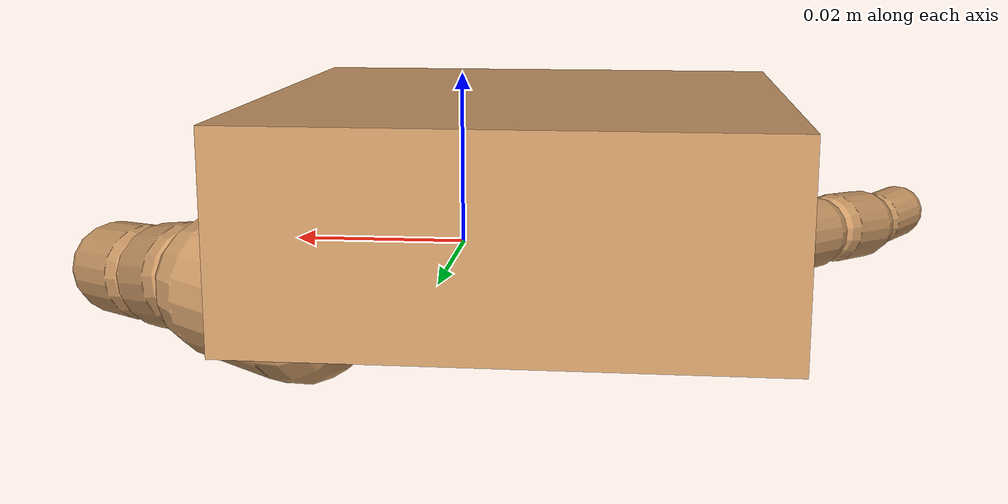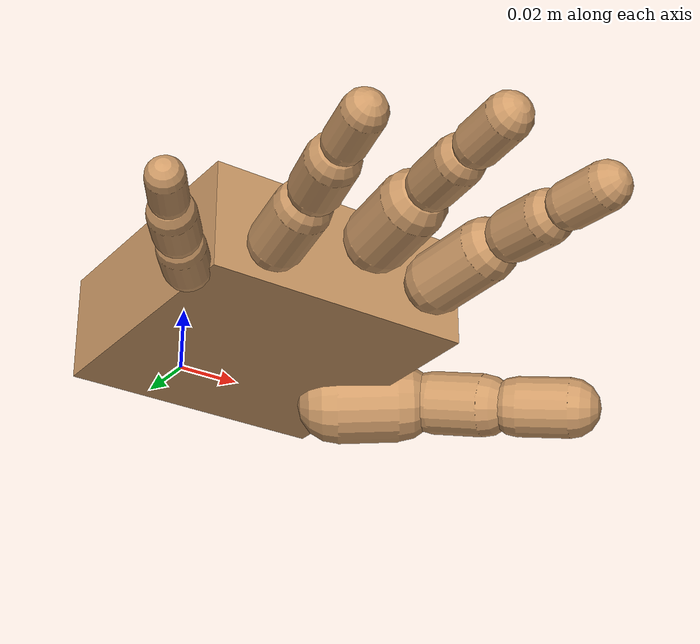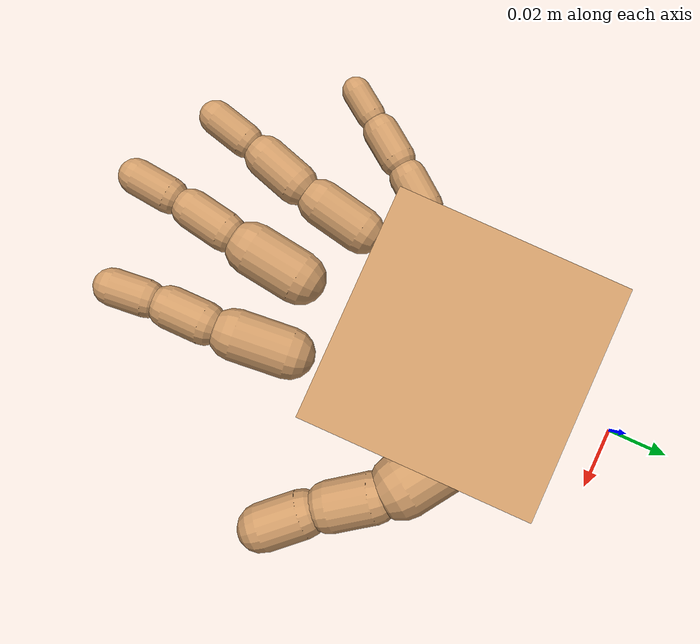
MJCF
<?xml version='1.0' encoding='utf-8'?>
<mujoco model="smplx_right_hand">
  <compiler coordinate="local" />
  <worldbody>
    <light pos="0 0 2" dir="0 0 -1" diffuse="1 1 1" specular="0.1 0.1 0.1" directional="true" />
    <body name="R_Wrist_Base" pos="0 0 0">
      <joint name="floating_base_joint" type="free" limited="false" actuatorfrclimited="false" />
      <body name="R_Wrist" pos="0 0 0" quat="1 0 0 0">
        <joint name="R_Wrist_x" type="hinge" pos="0 0 0" axis="1 0 0" stiffness="300" damping="30" armature="0.02" range="-180.0000 180.0000" limited="true" />
        <joint name="R_Wrist_y" type="hinge" pos="0 0 0" axis="0 1 0" stiffness="300" damping="30" armature="0.02" range="-180.0000 180.0000" limited="true" />
        <joint name="R_Wrist_z" type="hinge" pos="0 0 0" axis="0 0 1" stiffness="300" damping="30" armature="0.02" range="-180.0000 180.0000" limited="true" />
        <geom type="box" density="1230.823712" pos="-0.0029 -0.0537 -0.0044" size="0.04 0.0402 0.0159" quat="1.0000 0.0000 0.0000 0.0000" conaffinity="1" condim="3" contype="7" margin="0.001" rgba="0.8 0.6 .4 1" />
        <body name="R_Index1" pos="0.0196 -0.0999 -0.0118">
          <joint name="R_Index1_x" type="hinge" pos="0 0 0" axis="1 0 0" stiffness="100" damping="10" armature="0.02" range="-20 90" limited="true" />
          <joint name="R_Index1_y" type="hinge" pos="0 0 0" axis="0 1 0" stiffness="100" damping="10" armature="0.02" range="-0.1 0.1" limited="true" />
          <joint name="R_Index1_z" type="hinge" pos="0 0 0" axis="0 0 1" stiffness="100" damping="10" armature="0.02" range="-20 20" limited="true" />
          <geom type="capsule" contype="1" conaffinity="1" density="1000" fromto="0.0006 -0.0064 0.0004 0.0024 -0.0256 0.0018" size="0.0091" condim="3" margin="0.001" rgba="0.8 0.6 .4 1" />
          <body name="R_Index2" pos="0.003 -0.0319 0.0022">
            <joint name="R_Index2_x" type="hinge" pos="0 0 0" axis="1 0 0" stiffness="100" damping="10" armature="0.02" range="0 100" limited="true" />
            <joint name="R_Index2_y" type="hinge" pos="0 0 0" axis="0 1 0" stiffness="100" damping="10" armature="0.02" range="-0.1 0.1" limited="true" />
            <joint name="R_Index2_z" type="hinge" pos="0 0 0" axis="0 0 1" stiffness="100" damping="10" armature="0.02" range="-0.1 0.1" limited="true" />
            <geom type="capsule" contype="1" conaffinity="1" density="1000" fromto="0.0000 -0.0045 -0.0005 0.0000 -0.0180 -0.0019" size="0.0076" condim="3" margin="0.001" rgba="0.8 0.6 .4 1" />
            <body name="R_Index3" pos="0.0001 -0.0225 -0.0023">
              <joint name="R_Index3_x" type="hinge" pos="0 0 0" axis="1 0 0" stiffness="100" damping="10" armature="0.02" range="0 80" limited="true" />
              <joint name="R_Index3_y" type="hinge" pos="0 0 0" axis="0 1 0" stiffness="100" damping="10" armature="0.02" range="-0.1 0.1" limited="true" />
              <joint name="R_Index3_z" type="hinge" pos="0 0 0" axis="0 0 1" stiffness="100" damping="10" armature="0.02" range="-0.1 0.1" limited="true" />
              <geom type="capsule" contype="1" conaffinity="1" density="1000" fromto="0.0004 -0.0041 -0.0001 0.0016 -0.0164 -0.0003" size="0.0067" condim="3" margin="0.001" rgba="0.8 0.6 .4 1" />
            </body>
          </body>
        </body>
        <body name="R_Middle1" pos="-0.0037 -0.1074 -0.0094">
          <joint name="R_Middle1_x" type="hinge" pos="0 0 0" axis="1 0 0" stiffness="100" damping="10" armature="0.02" range="-20 90" limited="true" />
          <joint name="R_Middle1_y" type="hinge" pos="0 0 0" axis="0 1 0" stiffness="100" damping="10" armature="0.02" range="-0.1 0.1" limited="true" />
          <joint name="R_Middle1_z" type="hinge" pos="0 0 0" axis="0 0 1" stiffness="100" damping="10" armature="0.02" range="-20 20" limited="true" />
          <geom type="capsule" contype="1" conaffinity="1" density="1000" fromto="-0.0008 -0.0061 0.0002 -0.0032 -0.0245 0.0006" size="0.0094" condim="3" margin="0.001" rgba="0.8 0.6 .4 1" />
          <body name="R_Middle2" pos="-0.004 -0.0306 0.0008">
            <joint name="R_Middle2_x" type="hinge" pos="0 0 0" axis="1 0 0" stiffness="100" damping="10" armature="0.02" range="0 100" limited="true" />
            <joint name="R_Middle2_y" type="hinge" pos="0 0 0" axis="0 1 0" stiffness="100" damping="10" armature="0.02" range="-0.1 0.1" limited="true" />
            <joint name="R_Middle2_z" type="hinge" pos="0 0 0" axis="0 0 1" stiffness="100" damping="10" armature="0.02" range="-0.1 0.1" limited="true" />
            <geom type="capsule" contype="1" conaffinity="1" density="1000" fromto="-0.0008 -0.0047 -0.0004 -0.0033 -0.0188 -0.0016" size="0.007" condim="3" margin="0.001" rgba="0.8 0.6 .4 1" />
            <body name="R_Middle3" pos="-0.0041 -0.0235 -0.002">
              <joint name="R_Middle3_x" type="hinge" pos="0 0 0" axis="1 0 0" stiffness="100" damping="10" armature="0.02" range="0 80" limited="true" />
              <joint name="R_Middle3_y" type="hinge" pos="0 0 0" axis="0 1 0" stiffness="100" damping="10" armature="0.02" range="-0.1 0.1" limited="true" />
              <joint name="R_Middle3_z" type="hinge" pos="0 0 0" axis="0 0 1" stiffness="100" damping="10" armature="0.02" range="-0.1 0.1" limited="true" />
              <geom type="capsule" contype="1" conaffinity="1" density="1000" fromto="-0.0004 -0.0043 -0.0000 -0.0017 -0.0172 -0.0000" size="0.0064" condim="3" margin="0.001" rgba="0.8 0.6 .4 1" />
            </body>
          </body>
        </body>
        <body name="R_Pinky1" pos="-0.0435 -0.082 -0.0176">
          <joint name="R_Pinky1_x" type="hinge" pos="0 0 0" axis="1 0 0" stiffness="100" damping="10" armature="0.02" range="-20 90" limited="true" />
          <joint name="R_Pinky1_y" type="hinge" pos="0 0 0" axis="0 1 0" stiffness="100" damping="10" armature="0.02" range="-0.1 0.1" limited="true" />
          <joint name="R_Pinky1_z" type="hinge" pos="0 0 0" axis="0 0 1" stiffness="100" damping="10" armature="0.02" range="-20 20" limited="true" />
          <geom type="capsule" contype="1" conaffinity="1" density="1000" fromto="-0.0024 -0.0031 -0.0002 -0.0096 -0.0124 -0.0009" size="0.0067" condim="3" margin="0.001" rgba="0.8 0.6 .4 1" />
          <body name="R_Pinky2" pos="-0.012 -0.0155 -0.0011">
            <joint name="R_Pinky2_x" type="hinge" pos="0 0 0" axis="1 0 0" stiffness="100" damping="10" armature="0.02" range="0 100" limited="true" />
            <joint name="R_Pinky2_y" type="hinge" pos="0 0 0" axis="0 1 0" stiffness="100" damping="10" armature="0.02" range="-0.1 0.1" limited="true" />
            <joint name="R_Pinky2_z" type="hinge" pos="0 0 0" axis="0 0 1" stiffness="100" damping="10" armature="0.02" range="-0.1 0.1" limited="true" />
            <geom type="capsule" contype="1" conaffinity="1" density="1000" fromto="-0.0022 -0.0031 -0.0003 -0.0090 -0.0124 -0.0013" size="0.0065" condim="3" margin="0.001" rgba="0.8 0.6 .4 1" />
            <body name="R_Pinky3" pos="-0.0112 -0.0155 -0.0017">
              <joint name="R_Pinky3_x" type="hinge" pos="0 0 0" axis="1 0 0" stiffness="100" damping="10" armature="0.02" range="0 80" limited="true" />
              <joint name="R_Pinky3_y" type="hinge" pos="0 0 0" axis="0 1 0" stiffness="100" damping="10" armature="0.02" range="-0.1 0.1" limited="true" />
              <joint name="R_Pinky3_z" type="hinge" pos="0 0 0" axis="0 0 1" stiffness="100" damping="10" armature="0.02" range="-0.1 0.1" limited="true" />
              <geom type="capsule" contype="1" conaffinity="1" density="1000" fromto="-0.0018 -0.0027 0.0001 -0.0074 -0.0108 0.0003" size="0.0052" condim="3" margin="0.001" rgba="0.8 0.6 .4 1" />
            </body>
          </body>
        </body>
        <body name="R_Ring1" pos="-0.0271 -0.0954 -0.0124">
          <joint name="R_Ring1_x" type="hinge" pos="0 0 0" axis="1 0 0" stiffness="100" damping="10" armature="0.02" range="-20 90" limited="true" />
          <joint name="R_Ring1_y" type="hinge" pos="0 0 0" axis="0 1 0" stiffness="100" damping="10" armature="0.02" range="-0.1 0.1" limited="true" />
          <joint name="R_Ring1_z" type="hinge" pos="0 0 0" axis="0 0 1" stiffness="100" damping="10" armature="0.02" range="-20 20" limited="true" />
          <geom type="capsule" contype="1" conaffinity="1" density="1000" fromto="-0.0011 -0.0056 0.0003 -0.0042 -0.0224 0.0012" size="0.008" condim="3" margin="0.001" rgba="0.8 0.6 .4 1" />
          <body name="R_Ring2" pos="-0.0053 -0.028 0.0015">
            <joint name="R_Ring2_x" type="hinge" pos="0 0 0" axis="1 0 0" stiffness="100" damping="10" armature="0.02" range="0 100" limited="true" />
            <joint name="R_Ring2_y" type="hinge" pos="0 0 0" axis="0 1 0" stiffness="100" damping="10" armature="0.02" range="-0.1 0.1" limited="true" />
            <joint name="R_Ring2_z" type="hinge" pos="0 0 0" axis="0 0 1" stiffness="100" damping="10" armature="0.02" range="-0.1 0.1" limited="true" />
            <geom type="capsule" contype="1" conaffinity="1" density="1000" fromto="-0.0014 -0.0046 -0.0003 -0.0057 -0.0183 -0.0012" size="0.0074" condim="3" margin="0.001" rgba="0.8 0.6 .4 1" />
            <body name="R_Ring3" pos="-0.0071 -0.0228 -0.0015">
              <joint name="R_Ring3_x" type="hinge" pos="0 0 0" axis="1 0 0" stiffness="100" damping="10" armature="0.02" range="0 80" limited="true" />
              <joint name="R_Ring3_y" type="hinge" pos="0 0 0" axis="0 1 0" stiffness="100" damping="10" armature="0.02" range="-0.1 0.1" limited="true" />
              <joint name="R_Ring3_z" type="hinge" pos="0 0 0" axis="0 0 1" stiffness="100" damping="10" armature="0.02" range="-0.1 0.1" limited="true" />
              <geom type="capsule" contype="1" conaffinity="1" density="1000" fromto="-0.0010 -0.0042 0.0001 -0.0041 -0.0167 0.0004" size="0.006" condim="3" margin="0.001" rgba="0.8 0.6 .4 1" />
            </body>
          </body>
        </body>
        <body name="R_Thumb1" pos="0.0259 -0.0386 -0.0211">
          <joint name="R_Thumb1_x" type="hinge" pos="0 0 0" axis="1 0 0" stiffness="100" damping="10" armature="0.02" range="-45 45" limited="true" />
          <joint name="R_Thumb1_y" type="hinge" pos="0 0 0" axis="0 1 0" stiffness="100" damping="10" armature="0.02" range="-45 130" limited="true" />
          <joint name="R_Thumb1_z" type="hinge" pos="0 0 0" axis="0 0 1" stiffness="100" damping="10" armature="0.02" range="-70 30" limited="true" />
          <geom type="capsule" contype="1" conaffinity="1" density="1000" fromto="0.0050 -0.0034 0.0002 0.0200 -0.0136 0.0008" size="0.012" condim="3" margin="0.001" rgba="0.8 0.6 .4 1" />
          <body name="R_Thumb2" pos="0.025 -0.017 0.001">
            <joint name="R_Thumb2_x" type="hinge" pos="0 0 0" axis="1 0 0" stiffness="100" damping="10" armature="0.02" range="-0.1 0.1" limited="true" />
            <joint name="R_Thumb2_y" type="hinge" pos="0 0 0" axis="0 1 0" stiffness="100" damping="10" armature="0.02" range="-0.1 0.1" limited="true" />
            <joint name="R_Thumb2_z" type="hinge" pos="0 0 0" axis="0 0 1" stiffness="100" damping="10" armature="0.02" range="-55 20" limited="true" />
            <geom type="capsule" contype="1" conaffinity="1" density="1000" fromto="0.0031 -0.0041 -0.0010 0.0124 -0.0164 -0.0041" size="0.0095" condim="3" margin="0.001" rgba="0.8 0.6 .4 1" />
            <body name="R_Thumb3" pos="0.0155 -0.0205 -0.0052">
              <joint name="R_Thumb3_x" type="hinge" pos="0 0 0" axis="1 0 0" stiffness="100" damping="10" armature="0.02" range="-0.1 0.1" limited="true" />
              <joint name="R_Thumb3_y" type="hinge" pos="0 0 0" axis="0 1 0" stiffness="100" damping="10" armature="0.02" range="-0.1 0.1" limited="true" />
              <joint name="R_Thumb3_z" type="hinge" pos="0 0 0" axis="0 0 1" stiffness="100" damping="10" armature="0.02" range="-80 15" limited="true" />
              <geom type="capsule" contype="1" conaffinity="1" density="1000" fromto="0.0035 -0.0037 -0.0006 0.0140 -0.0148 -0.0025" size="0.009" condim="3" margin="0.001" rgba="0.8 0.6 .4 1" />
            </body>
          </body>
        </body>
      </body>
    </body>
  </worldbody>
  <actuator>
    <motor name="R_Wrist_x" joint="R_Wrist_x" gear="500" />
    <motor name="R_Wrist_y" joint="R_Wrist_y" gear="500" />
    <motor name="R_Wrist_z" joint="R_Wrist_z" gear="500" />
    <motor name="R_Index1_x" joint="R_Index1_x" gear="500" />
    <motor name="R_Index1_y" joint="R_Index1_y" gear="500" />
    <motor name="R_Index1_z" joint="R_Index1_z" gear="500" />
    <motor name="R_Index2_x" joint="R_Index2_x" gear="500" />
    <motor name="R_Index2_y" joint="R_Index2_y" gear="500" />
    <motor name="R_Index2_z" joint="R_Index2_z" gear="500" />
    <motor name="R_Index3_x" joint="R_Index3_x" gear="500" />
    <motor name="R_Index3_y" joint="R_Index3_y" gear="500" />
    <motor name="R_Index3_z" joint="R_Index3_z" gear="500" />
    <motor name="R_Middle1_x" joint="R_Middle1_x" gear="500" />
    <motor name="R_Middle1_y" joint="R_Middle1_y" gear="500" />
    <motor name="R_Middle1_z" joint="R_Middle1_z" gear="500" />
    <motor name="R_Middle2_x" joint="R_Middle2_x" gear="500" />
    <motor name="R_Middle2_y" joint="R_Middle2_y" gear="500" />
    <motor name="R_Middle2_z" joint="R_Middle2_z" gear="500" />
    <motor name="R_Middle3_x" joint="R_Middle3_x" gear="500" />
    <motor name="R_Middle3_y" joint="R_Middle3_y" gear="500" />
    <motor name="R_Middle3_z" joint="R_Middle3_z" gear="500" />
    <motor name="R_Pinky1_x" joint="R_Pinky1_x" gear="500" />
    <motor name="R_Pinky1_y" joint="R_Pinky1_y" gear="500" />
    <motor name="R_Pinky1_z" joint="R_Pinky1_z" gear="500" />
    <motor name="R_Pinky2_x" joint="R_Pinky2_x" gear="500" />
    <motor name="R_Pinky2_y" joint="R_Pinky2_y" gear="500" />
    <motor name="R_Pinky2_z" joint="R_Pinky2_z" gear="500" />
    <motor name="R_Pinky3_x" joint="R_Pinky3_x" gear="500" />
    <motor name="R_Pinky3_y" joint="R_Pinky3_y" gear="500" />
    <motor name="R_Pinky3_z" joint="R_Pinky3_z" gear="500" />
    <motor name="R_Ring1_x" joint="R_Ring1_x" gear="500" />
    <motor name="R_Ring1_y" joint="R_Ring1_y" gear="500" />
    <motor name="R_Ring1_z" joint="R_Ring1_z" gear="500" />
    <motor name="R_Ring2_x" joint="R_Ring2_x" gear="500" />
    <motor name="R_Ring2_y" joint="R_Ring2_y" gear="500" />
    <motor name="R_Ring2_z" joint="R_Ring2_z" gear="500" />
    <motor name="R_Ring3_x" joint="R_Ring3_x" gear="500" />
    <motor name="R_Ring3_y" joint="R_Ring3_y" gear="500" />
    <motor name="R_Ring3_z" joint="R_Ring3_z" gear="500" />
    <motor name="R_Thumb1_x" joint="R_Thumb1_x" gear="500" />
    <motor name="R_Thumb1_y" joint="R_Thumb1_y" gear="500" />
    <motor name="R_Thumb1_z" joint="R_Thumb1_z" gear="500" />
    <motor name="R_Thumb2_x" joint="R_Thumb2_x" gear="500" />
    <motor name="R_Thumb2_y" joint="R_Thumb2_y" gear="500" />
    <motor name="R_Thumb2_z" joint="R_Thumb2_z" gear="500" />
    <motor name="R_Thumb3_x" joint="R_Thumb3_x" gear="500" />
    <motor name="R_Thumb3_y" joint="R_Thumb3_y" gear="500" />
    <motor name="R_Thumb3_z" joint="R_Thumb3_z" gear="500" />
  </actuator>
  <contact />
  <sensor />
  <size njmax="256" nconmax="256" />
</mujoco>
